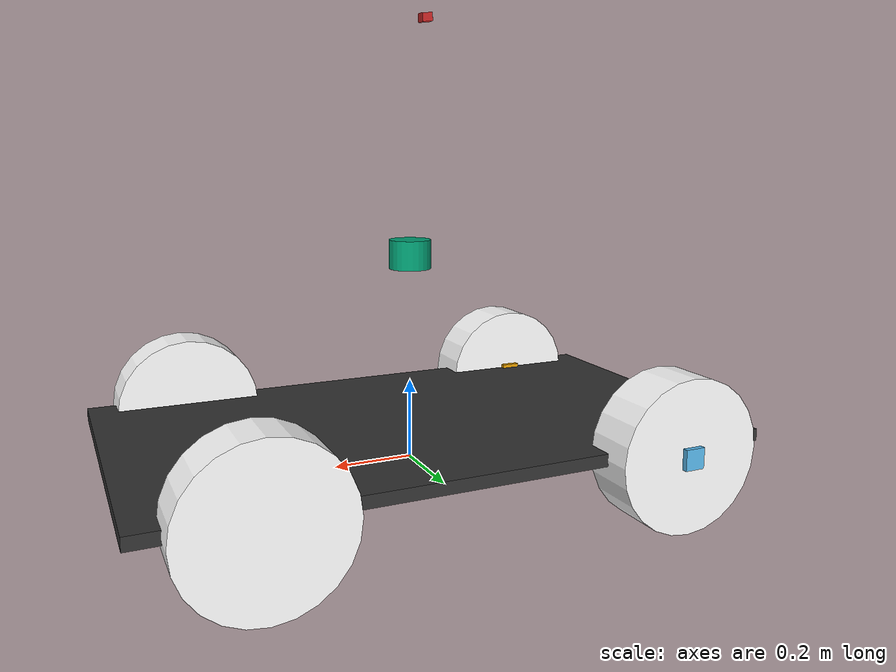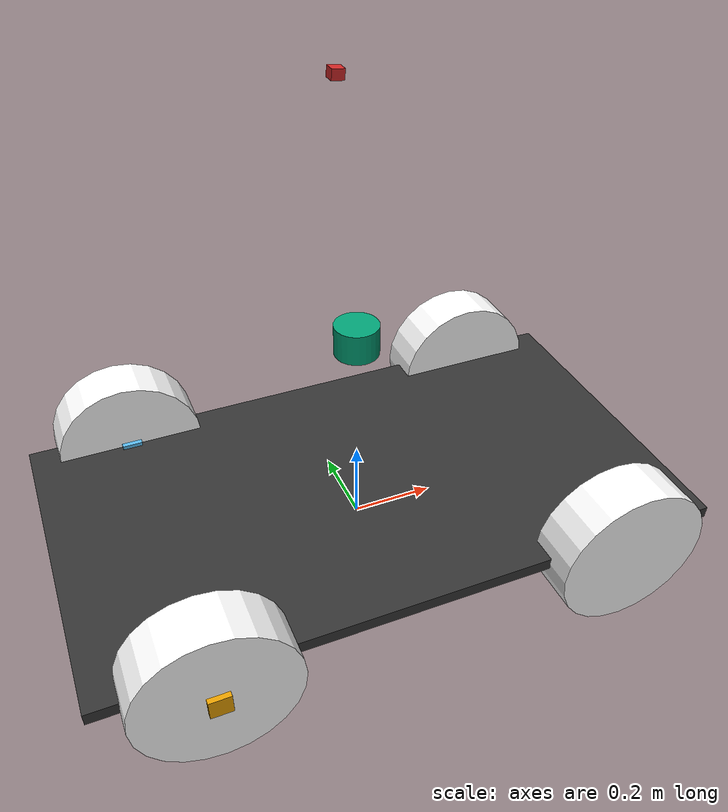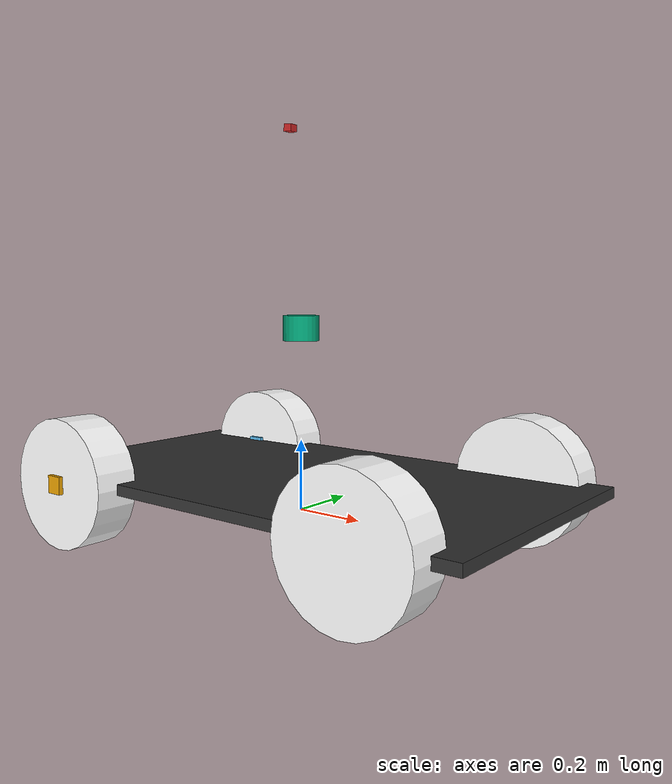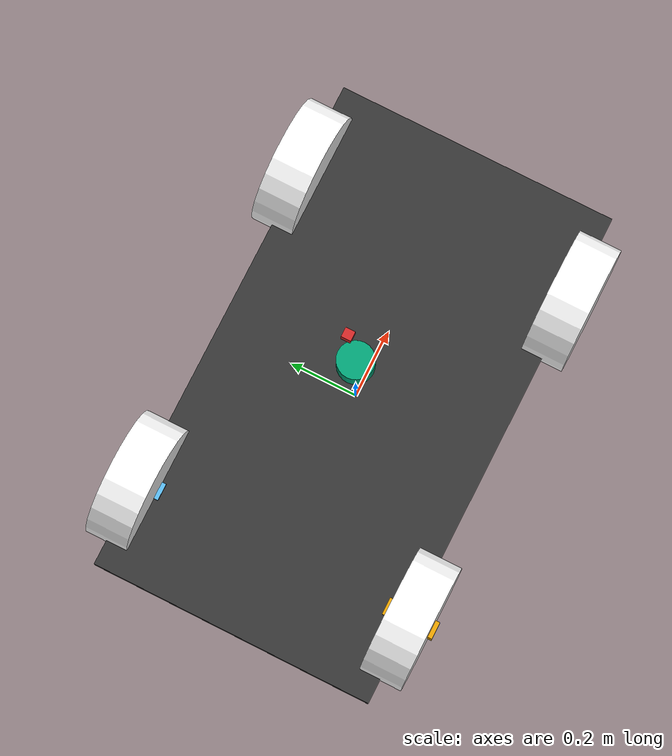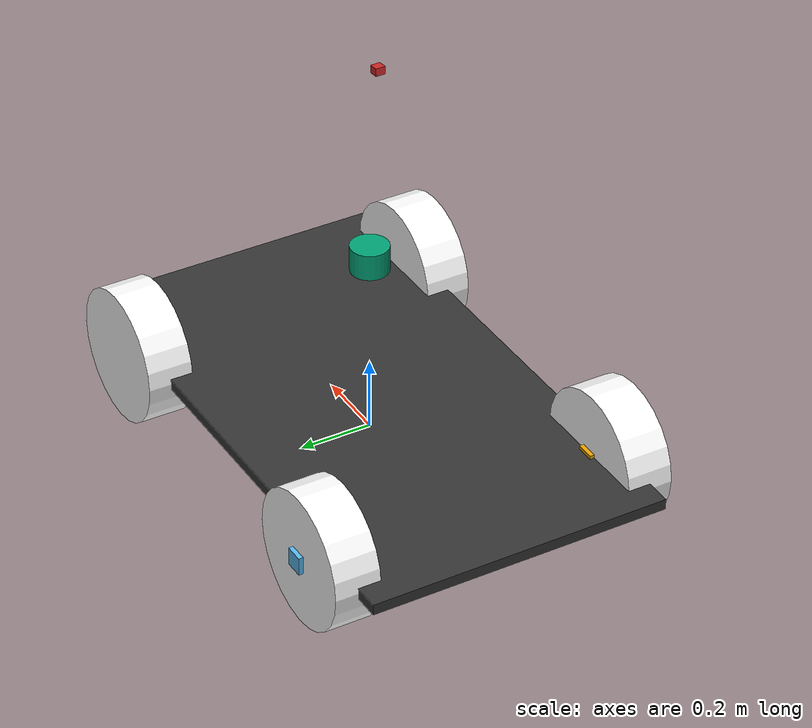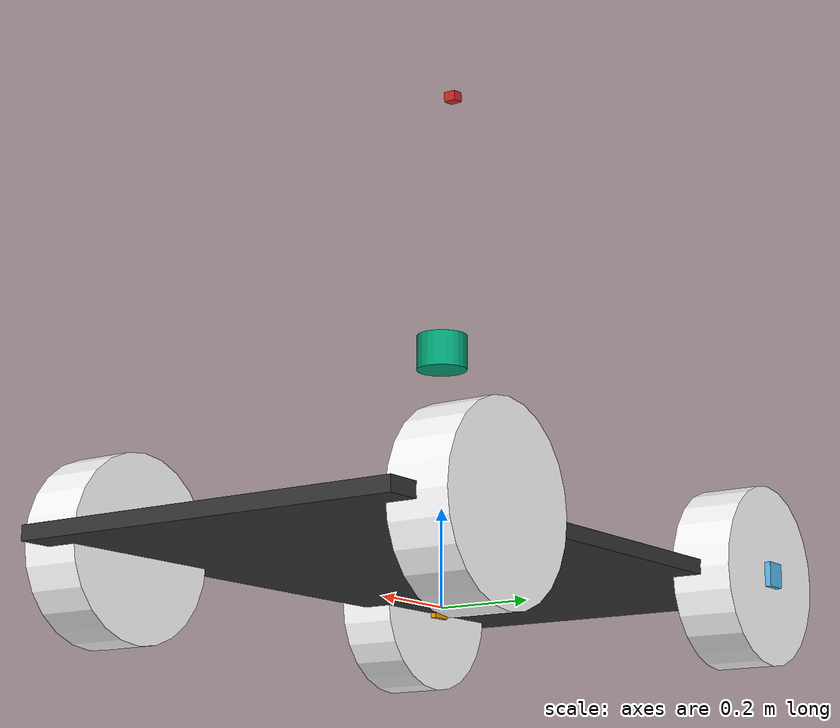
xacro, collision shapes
<?xml version="1.0"?>

<robot xmlns:xacro="http://www.ros.org/wiki/xacro" name="mevi">

    <xacro:arg name="gpu" default="false"/>
    <xacro:property name="gpu" value="$(arg gpu)" />
    <xacro:arg name="organize_cloud" default="false"/>
    <xacro:property name="organize_cloud" value="$(arg organize_cloud)" />

    <!-- Include -->
    <xacro:include filename="$(find spawn_car)/model/mevi/urdf/bases/mevi_body.urdf.xacro"/>
    <xacro:include filename="$(find spawn_car)/model/mevi/urdf/wheels/mevi_suspension.urdf.xacro"/>
    <xacro:include filename="$(find spawn_car)/model/mevi/urdf/vehicle_properties.urdf.xacro"/>
    <xacro:include filename="$(find spawn_car)/model/mevi/urdf/sensors/camera.urdf.xacro"/>
    <xacro:include filename="$(find spawn_car)/model/mevi/urdf/sensors/vlp-16.urdf.xacro"/>
    <!-- Robots Elements -->
    <xacro:mevi_base name="mevi"/>
    <xacro:Front_Right_Wheel/>
    <xacro:Front_Left_Wheel/>
    <xacro:Rear_Right_Wheel/>
    <xacro:Rear_Left_Wheel/>

    <xacro:rgb_camera frlr_prefix="front" lrc_prefix="center">
      <origin xyz="-0.04 0 1" rpy="0 0.087 0"/>
    </xacro:rgb_camera>

    <xacro:VLP-16 parent="chassis" name="velodyne" topic="/velodyne_points" organize_cloud="${organize_cloud}" hz="10" samples="440" gpu="${gpu}">
      <origin xyz="0 0 0.4" rpy="0 0 0" />
    </xacro:VLP-16>

      <gazebo>
        <plugin name="p3d" filename="libgazebo_ros_p3d.so">
          <bodyName>chassis</bodyName>
          <topicName>base_pose_ground_truth</topicName>
          <frameName>map</frameName>
          <updateRate>100.0</updateRate>
        </plugin>
      </gazebo>

      <gazebo>
        <plugin name="gazebo_ros_control" filename="libgazebo_ros_control.so">
          <robotNamespace>/mevi_model</robotNamespace>
          <!--The two lines below came from: https://answers.ros.org/question/292444/gazebo_ros_control-plugin-gazeboroscontrolplugin-missing-legacymodens-defaultrobothwsim/-->
          <robotSimType>gazebo_ros_control/DefaultRobotHWSim</robotSimType>
          <legacyModeNS>true</legacyModeNS>
        </plugin>
      </gazebo>

      <transmission name="front_left_steer_trans">
        <type>transmission_interface/SimpleTransmission</type>
        <actuator name="left_steer">
          <mechanicalReduction>1</mechanicalReduction>
        </actuator>
          <joint name="front_left_steer_joint">

          <!--this is a  mechanism for ros_control, it can be position, velocity, effort or something
              to communicate with hardware. See: https://wiki.ros.org/ros_control-->
            <hardwareInterface>hardware_interface/PositionJointInterface</hardwareInterface>
          </joint>
      </transmission>

      <transmission name="front_right_steer_trans">
        <type>transmission_interface/SimpleTransmission</type>
        <actuator name="right_steer">
          <mechanicalReduction>1</mechanicalReduction>
        </actuator>
          <joint name="front_right_steer_joint">
            <hardwareInterface>hardware_interface/PositionJointInterface</hardwareInterface>
          </joint>
      </transmission>

      <transmission name="rear_left_wheel_trans">
        <type>transmission_interface/SimpleTransmission</type>
        <actuator name="rear_left_motor">
          <mechanicalReduction>1</mechanicalReduction>
        </actuator>
          <joint name="rear_left_wheel_joint">
            <hardwareInterface>hardware_interface/VelocityJointInterface</hardwareInterface>
          </joint>
      </transmission>

      <transmission name="rear_right_wheel_trans">
        <type>transmission_interface/SimpleTransmission</type>
        <actuator name="rear_right_motor">
          <mechanicalReduction>1</mechanicalReduction>
        </actuator>
          <joint name="rear_right_wheel_joint">
            <hardwareInterface>hardware_interface/VelocityJointInterface</hardwareInterface>
          </joint>
      </transmission>

</robot>

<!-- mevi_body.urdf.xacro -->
<!--
Created on Thu Jan 18 2024

@author: hifzhil
-->
<robot xmlns:xacro="http://www.ros.org/wiki/xacro" name="mevi">
    <xacro:include filename="$(find spawn_car)/model/mevi/urdf/vehicle_properties.urdf.xacro"/>
    <xacro:include filename="$(find spawn_car)/model/mevi/urdf/bases/mevi_body.gazebo.xacro"/>

    <material name="chassis_mat">
        <color rgba="0.2 0.2 0.2 1"/>
        <!-- grey -->
    </material>

    <xacro:macro name="mevi_base" params="name">
        <link name="dummy">
            <visual>
                <origin xyz="0 0 0" rpy="0 0 0"/>
                <geometry>
                    <box size="0.001 0.001 0.001"/>
                </geometry>
            </visual>
        </link>

        <joint name="world_to_vehicle_center" type="fixed">
            <parent link="dummy"/>
            <child link="chassis"/>
            <origin xyz="0.0 0.0 ${ground_clearance + (chassis_thickness/2)}"/>
            <axis xyz = "0 0 1"/>
        </joint>

        <link name="chassis">

            <visual>
                <origin xyz="0 0 0" rpy="0 0 0"/>
                <geometry>
                    <box size="${chassis_length} ${chassis_width} ${chassis_thickness}"/>
                </geometry>
                <material name="chassis_mat"/>
            </visual>

            <collision>
                <origin xyz="0 0 0" rpy="0 0 0"/>
                <geometry>
                    <box size="${chassis_length} ${chassis_width} ${chassis_thickness}"/>
                </geometry>
            </collision>

            <xacro:inertia_of_body/>
        </link>
    </xacro:macro>

</robot>

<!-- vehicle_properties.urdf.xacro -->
<!--
Created on Thu Jan 18 12:02:12 2024

@author: hifzhil
-->

<robot name="mevi_properties" xmlns:xacro="http://www.ros.org/wiki/xacro">
    <!-- my name is Mevi-->

    <!-- CONSTANT -->
    <xacro:property name="pi_constant" value="3.14159265" />
    <xacro:property name = "degree_90" value="1.57079633"/>
    <xacro:property name = "degree_180" value="3.14159265"/>

    <xacro:property name="car_length" value="1.490" />
    <xacro:property name="car_width" value="0.830" />
    <xacro:property name="car_height" value="1.550" />
    <xacro:property name="front_overhang" value="0.220" />
    <xacro:property name="rear_overhang" value="0.280" />

    <!-- misalkan mevi adalah balok -->
    <xacro:property name="vehicle_volume" value="${car_length*car_width*car_height}"/>

    <xacro:property name="ground_clearance" value="0.07" />
    <xacro:property name="wheel_base" value="0.98" />
    <!-- chassis -->
    <xacro:property name="chassis_width" value="0.830" />
    <xacro:property name="chassis_length" value="1.49" />
    <xacro:property name="chassis_thickness" value="0.03" />
    <xacro:property name="chassis_mass" value="200" />
       <!-- variable -->

    <!-- aluminium density is 2.7 g/cm³ or 2700 kg/m3-->
    <xacro:property name="body_density" value="2700.0" />
    <!-- density of all tyre brands is nearly the same which is around 1.1 gr/cm3 or 1100 kg/m3 -->
    <xacro:property name="wheel_density" value="1100.0" />

    <!-- fixed transformation
        this value on rad. 1.570795 is a phi/2
    -->
    <xacro:property name="wheel_cylindrical_transform" value="1.570795" />

    <!-- mass -->
    <!-- let assume the mass of box same as half aluminium at it size-->
    <xacro:property name="body_mass" value="${body_density*body_volume*(1/2)}"/>
    <xacro:property name="wheel_mass" value="${wheel_density*wheel_volume}"/>

    <!-- moment inertia of wheel -->
    <xacro:property name="Iz_wheel" value="${0.5*wheel_mass*wheel_radius*wheel_radius}"/>
    <xacro:property name="I_wheel" value="${1/12*wheel_mass*(3*wheel_radius*wheel_radius + wheel_length*wheel_length)}"/>

  <!-- this is macro that we can call it anywhere on code
      it defines all inertia component on the wheel
  -->
    <xacro:macro name="inertia_of_wheel">
        <inertial>
            <origin rpy="0 0 0" xyz="0 0 0"/>
            <mass value="${wheel_mass}"/>
            <inertia
                ixx="${I_wheel}"
                ixy="0.0"
                ixz="0.0"
                iyy="${I_wheel}"
                iyz="0.0"
                izz="${Iz_wheel}"
            />
        </inertial>
    </xacro:macro>

    <xacro:macro name="inertia_of_body">
        <inertial>
            <origin rpy="0 0 0" xyz="0 0 0"/>
            <mass value="${chassis_mass}"/>
            <inertia
                ixy="0.0"
                ixz="0.0"
                iyz="0.0"
                ixx = "${(1/12)*chassis_mass*(chassis_width*chassis_width + chassis_thickness*chassis_thickness)}"
                iyy = "${(1/12)*chassis_mass*(chassis_length*chassis_length + chassis_thickness*chassis_thickness)}"
                izz = "${(1/12)*chassis_mass*(chassis_length*chassis_length + chassis_width*chassis_width)}"
            />
        </inertial>
    </xacro:macro>
</robot>

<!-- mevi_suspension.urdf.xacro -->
<!--
Created on Sat Jan 20 2024

@author: hifzhil
-->
<robot xmlns:xacro="http://www.ros.org/wiki/xacro" name="suspension urdf">

    <material name="tire_mat">
        <color rgba="1 1 1 1"/>
    </material>

    <xacro:include filename="$(find spawn_car)/model/mevi/urdf/wheels/suspension.gazebo.xacro"/>
    <xacro:include filename="$(find spawn_car)/model/mevi/urdf/vehicle_properties.urdf.xacro"/>

    <xacro:property name="front_wheel_radius" value="0.185"/>
    <xacro:property name="front_wheel_width" value="0.125"/>
    <xacro:property name="front_wheel_mass" value="10.0"/>

    <xacro:property name="rear_wheel_radius" value="0.185"/>
    <xacro:property name="rear_wheel_width" value="0.125"/>
    <xacro:property name="rear_wheel_mass" value="10.0"/>

    <xacro:property name="front_track" value="0.830" />
    <xacro:property name="rear_track" value="0.750" />

    <xacro:property name="Iz_rear_wheel" value="${0.5*rear_wheel_mass*rear_wheel_radius*rear_wheel_radius}"/>
    <xacro:property name="I_rear_wheel" value="${1/12*rear_wheel_mass*(3*rear_wheel_radius*rear_wheel_radius + rear_wheel_width*rear_wheel_width)}"/>

    <xacro:property name="Iz_front_wheel" value="${0.5*front_wheel_mass*front_wheel_radius*front_wheel_radius}"/>
    <xacro:property name="I_front_wheel" value="${1/12*front_wheel_mass*(3*front_wheel_radius*front_wheel_radius + front_wheel_width*front_wheel_width)}"/>

    <xacro:macro name="inertia_of_front_wheel">
        <inertial>
          <origin rpy="0 0 0" xyz="0 0 0"/>
          <mass value="${front_wheel_mass}"/>
          <inertia
            ixx="${I_front_wheel}"
            ixy="0.0"
            ixz="0.0"
            iyy="${I_front_wheel}"
            iyz="0.0"
            izz="${Iz_front_wheel}"
          />
        </inertial>
    </xacro:macro>

    <xacro:macro name="inertia_of_rear_wheel">
        <inertial>
          <origin rpy="0 0 0" xyz="0 0 0"/>
          <mass value="${rear_wheel_mass}"/>
          <inertia
            ixx="${I_rear_wheel}"
            ixy="0.0"
            ixz="0.0"
            iyy="${I_rear_wheel}"
            iyz="0.0"
            izz="${Iz_rear_wheel}"
          />
        </inertial>
    </xacro:macro>

    <xacro:macro name="Front_Left_Wheel">
        <joint name="front_left_steer_joint" type="revolute">
            <parent link="chassis"/>
            <child link="fl_axle"/>
            <origin rpy="${degree_90} 0 0" xyz="${-wheel_base/2} ${-front_track/2} 0"/>
            <axis xyz="0 1 0"/>
            <limit lower="-0.785398" upper="0.785398" effort="500000" velocity="250"/>
        </joint>
        <joint name="front_left_wheel_joint" type="continuous">
            <parent link="fl_axle"/>
            <child link="front_left_wheel"/>
            <origin xyz="0 0 0" rpy="0 0 0"/>
            <axis xyz="0 0 -1"/>
            <limit effort="1000" velocity="1000"/>
            <dynamics damping="1.0" friction="1.0"/>
        </joint>
    </xacro:macro>

    <xacro:macro name="Front_Right_Wheel">
        <joint name="front_right_steer_joint" type="revolute">
            <parent link="chassis"/>
            <child link="fr_axle"/>
            <origin rpy="${degree_90} 0 0" xyz="${-wheel_base/2} ${front_track/2} 0"/>
            <axis xyz="0 1 0"/>
            <limit lower="-0.785398" upper="0.785398" effort="500000" velocity="250"/>
        </joint>
        <joint name="front_right_wheel_joint" type="continuous">
            <parent link="fr_axle"/>
            <child link="front_right_wheel"/>
            <origin xyz="0 0 0" rpy="0 0 0"/>
            <axis xyz="0 0 -1"/>
            <limit effort="1000" velocity="1000"/>
            <dynamics damping="1.0" friction="1.0"/>
        </joint>
    </xacro:macro>

    <xacro:macro name="Rear_Left_Wheel">
        <joint name="rear_left_wheel_joint" type="continuous">
            <parent link="chassis"/>
            <child link="rear_left_wheel"/>
            <origin rpy="${degree_90} 0 0" xyz="${wheel_base/2} ${-front_track/2} 0"/>
            <axis xyz="0 0 -1"/>
            <limit effort="1000" velocity="1000"/>
            <dynamics damping="1.0" friction="1.0"/>
        </joint>
    </xacro:macro>

    <xacro:macro name="Rear_Right_Wheel">
        <joint name="rear_right_wheel_joint" type="continuous">
            <parent link="chassis"/>
            <child link="rear_right_wheel"/>
            <origin rpy="${degree_90} 0 0" xyz="${wheel_base/2} ${front_track/2} 0"/>
            <axis xyz="0 0 -1"/>
            <limit effort="1000" velocity="1000"/>
            <dynamics damping="1.0" friction="1.0"/>
        </joint>
    </xacro:macro>

    <link name="fl_axle">
        <inertial>
          <mass value="1"/>
          <origin xyz="0 0 0"/>
          <inertia ixx="0.004" ixy="0.0" ixz="0.0" iyy="0.004" iyz="0.0" izz="0.004"/>
        </inertial>
        <collision>
            <geometry>
              <box size="0.05 0.05 0.15" />
            </geometry>
        </collision>
        <visual>
            <geometry>
              <box size="0.05 0.05 0.15" />
            </geometry>
        </visual>
    </link>

    <link name="fr_axle">
        <inertial>
            <mass value="1"/>
            <origin xyz="0 0 0"/>
            <inertia ixx="0.004" ixy="0.0" ixz="0.0" iyy="0.004" iyz="0.0" izz="0.004"/>
        </inertial>
        <collision>
            <geometry>
              <box size="0.05 0.05 0.15" />
            </geometry>
        </collision>
        <visual>
            <geometry>
              <box size="0.05 0.05 0.15" />
            </geometry>
        </visual>
    </link>

    <link name="front_right_wheel">
        <visual>
            <origin rpy="0 0 0" xyz="0 0 0"/>
            <geometry>
                <cylinder length="${front_wheel_width}" radius="${front_wheel_radius}"/>
            </geometry>
            <material name="tire_mat"/>
        </visual>
        <collision>
            <origin rpy="0 0 0" xyz="0 0 0"/>
            <geometry>
                <cylinder length="${front_wheel_width}" radius="${front_wheel_radius}"/>
            </geometry>
        </collision>
        <xacro:inertia_of_front_wheel/>
    </link>

    <link name="front_left_wheel">
        <visual>
            <origin rpy="0 0 0" xyz="0 0 0"/>
            <geometry>
                <cylinder length="${front_wheel_width}" radius="${front_wheel_radius}"/>
            </geometry>
            <material name="tire_mat"/>
        </visual>
        <collision>
            <origin rpy="0 0 0" xyz="0 0 0"/>
            <geometry>
                <cylinder length="${front_wheel_width}" radius="${front_wheel_radius}"/>
            </geometry>
        </collision>
        <xacro:inertia_of_front_wheel/>
    </link>

    <link name="rear_right_wheel">
        <visual>
            <origin rpy="0 0 0" xyz="0 0 0"/>
            <geometry>
                <cylinder length="${rear_wheel_width}" radius="${rear_wheel_radius}"/>
            </geometry>
            <material name="tire_mat"/>
        </visual>
        <collision>
            <origin rpy="0 0 0" xyz="0 0 0"/>
            <geometry>
                <cylinder length="${rear_wheel_width}" radius="${rear_wheel_radius}"/>
            </geometry>
        </collision>
        <xacro:inertia_of_rear_wheel/>
    </link>

    <link name="rear_left_wheel">
        <visual>
            <origin rpy="0 0 0" xyz="0 0 0"/>
            <geometry>
                <cylinder length="${rear_wheel_width}" radius="${rear_wheel_radius}"/>
            </geometry>
            <material name="tire_mat"/>
        </visual>
        <collision>
            <origin rpy="0 0 0" xyz="0 0 0"/>
            <geometry>
                <cylinder length="${rear_wheel_width}" radius="${rear_wheel_radius}"/>
            </geometry>
        </collision>
        <xacro:inertia_of_rear_wheel/>
    </link>
</robot>

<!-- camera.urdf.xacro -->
<robot xmlns:xacro="http://www.ros.org/wiki/xacro" name="rgb_camera">

  <xacro:macro name="rgb_camera" params="frlr_prefix lrc_prefix *origin">

    <joint name="${frlr_prefix}_${lrc_prefix}_camera_joint" type="fixed">
      <axis xyz="0 1 0" />
      <xacro:insert_block name="origin"/>
      <!-- parent link dari camera adalah chassis -->
      <parent link="chassis"/>
      <child link="${frlr_prefix}_${lrc_prefix}_camera_link"/>
    </joint>

    <link name="${frlr_prefix}_${lrc_prefix}_camera_link">
      <collision>
        <origin xyz="0 0 0" rpy="0 0 0"/>
        <geometry>
          <box size="0.026 0.026 0.0203"/>
        </geometry>
      </collision>

      <visual>
        <origin xyz="0 0 0" rpy="0 0 0"/>
        <geometry>
          <box size="0.026 0.026 0.0203"/>
        </geometry>
        <material name="red"/>
      </visual>

      <inertial>
        <mass value="1e-5" />
        <origin xyz="0 0 0" rpy="0 0 0"/>
        <inertia ixx="1e-6" ixy="0" ixz="0" iyy="1e-6" iyz="0" izz="1e-6" />
      </inertial>
    </link>

    <joint name="${frlr_prefix}_${lrc_prefix}_camera_optical_joint" type="fixed">
      <origin xyz="0 0 0" rpy="${-pi/2} 0 ${-pi/2}"/>
      <parent link="${frlr_prefix}_${lrc_prefix}_camera_link"/>
      <child link="${frlr_prefix}_${lrc_prefix}_camera_link_optical"/>
    </joint>

    <link name="${frlr_prefix}_${lrc_prefix}_camera_link_optical"/>
        <gazebo reference="${frlr_prefix}_${lrc_prefix}_camera_link">
            <mu1>0.2</mu1>
            <mu2>0.2</mu2>
            <material>Gazebo/Red</material>
            <sensor type="camera" name="${frlr_prefix}_${lrc_prefix}_camera">
                <update_rate>30.0</update_rate>
                <camera name="head">
                    <horizontal_fov>2.09</horizontal_fov>
                    <image>
                        <width>1920</width>
                        <height>1200</height>
                        <format>R8G8B8</format>
                    </image>
                    <clip>
                        <near>0.1</near>
                        <far>30</far>
                    </clip>
                    <noise>
                        <type>gaussian</type>
                        <mean>0.0</mean>
                        <stddev>0.007</stddev>
                    </noise>
                </camera>
                <plugin name="${frlr_prefix}_${lrc_prefix}_camera_controller" filename="libgazebo_ros_camera.so">
                    <alwaysOn>true</alwaysOn>
                    <updateRate>0.0</updateRate>
                    <cameraName>mevi/${frlr_prefix}_${lrc_prefix}_camera</cameraName>
                    <imageTopicName>image_raw</imageTopicName>
                    <cameraInfoTopicName>camera_info</cameraInfoTopicName>
                    <frameName>${frlr_prefix}_${lrc_prefix}_camera_link_optical</frameName>
                    <!-- setting hackBaseline to anything but 0.0 will cause a misalignment
                        between the gazebo sensor image and the frame it is supposed to
                        be attached to -->
                    <hackBaseline>0.0</hackBaseline>
                    <distortionK1>0.0</distortionK1>
                    <distortionK2>0.0</distortionK2>
                    <distortionK3>0.0</distortionK3>
                    <distortionT1>0.0</distortionT1>
                    <distortionT2>0.0</distortionT2>
                    <CxPrime>0</CxPrime>
                    <Cx>0.0</Cx>
                    <Cy>0.0</Cy>
                    <focalLength>0.0</focalLength>
                </plugin>
            </sensor>
        </gazebo>

  </xacro:macro>
</robot>

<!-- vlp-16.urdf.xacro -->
<robot xmlns:xacro="http://www.ros.org/wiki/xacro" name="VLP-16">
  <xacro:property name="M_PI" value="3.1415926535897931" />
    <xacro:macro name="VLP-16" params="*origin parent:=chassis name:=velodyne topic:=/velodyne_points organize_cloud:=false hz:=10 lasers:=16 samples:=1875 collision_range:=0.3 min_range:=0.9 max_range:=130.0 noise:=0.008 min_angle:=-${M_PI} max_angle:=${M_PI} gpu:=false">

        <joint name="${name}_base_mount_joint" type="fixed">
        <xacro:insert_block name="origin" />
        <parent link="${parent}"/>
        <child link="${name}_base_link"/>
        </joint>

        <link name="${name}_base_link">
        <inertial>
            <mass value="0.83"/>
            <origin xyz="0 0 0.03585"/>
            <inertia ixx="${(0.83 * (3.0*0.0516*0.0516 + 0.0717*0.0717)) / 12.0}" ixy="0" ixz="0"
            iyy="${(0.83 * (3.0*0.0516*0.0516 + 0.0717*0.0717)) / 12.0}" iyz="0"
            izz="${0.5 * 0.83 * (0.0516*0.0516)}"/>
        </inertial>
        <visual>
            <geometry>
            <mesh filename="package://spawn_car/model/mevi/meshes/VLP16_base_1.dae" />
            </geometry>
        </visual>
        <visual>
            <geometry>
            <mesh filename="package://spawn_car/model/mevi/meshes/VLP16_base_2.dae" />
            </geometry>
        </visual>
        <collision>
            <origin rpy="0 0 0" xyz="0 0 0.03585"/>
            <geometry>
            <cylinder radius="0.0516" length="0.0717"/>
            </geometry>
        </collision>
        </link>

        <joint name="${name}_base_scan_joint" type="fixed" >
        <origin xyz="0 0 0.0377" rpy="0 0 0" />
        <parent link="${name}_base_link" />
        <child link="${name}"/>
        </joint>

        <link name="${name}">
        <inertial>
            <mass value="0.01"/>
            <origin xyz="0 0 0"/>
            <inertia ixx="1e-7" ixy="0" ixz="0" iyy="1e-7" iyz="0" izz="1e-7"/>
        </inertial>
        <visual>
            <origin xyz="0 0 -0.0377" />
            <geometry>
            <mesh filename="package://spawn_car/model/mevi/meshes/VLP16_scan.dae" />
            </geometry>
        </visual>
        <collision>
            <geometry>
            <sphere radius="0"/>
            </geometry>
        </collision>
        </link>

        <!-- Gazebo requires the velodyne_gazebo_plugins package -->
        <gazebo reference="${name}">
        <xacro:if value="${gpu}">
            <sensor type="gpu_ray" name="${name}-VLP16">
            <pose>0 0 0 0 0 0</pose>
            <visualize>false</visualize>
            <update_rate>${hz}</update_rate>
            <ray>
                <scan>
                <horizontal>
                    <samples>${samples}</samples>
                    <resolution>1</resolution>
                    <min_angle>${min_angle}</min_angle>
                    <max_angle>${max_angle}</max_angle>
                </horizontal>
                <vertical>
                    <samples>${lasers}</samples>
                    <resolution>1</resolution>
                    <min_angle>-${15.0*M_PI/180.0}</min_angle>
                    <max_angle> ${15.0*M_PI/180.0}</max_angle>
                </vertical>
                </scan>
                <range>
                <min>${collision_range}</min>
                <max>${max_range+1}</max>
                <resolution>0.001</resolution>
                </range>
                <noise>
                <type>gaussian</type>
                <mean>0.0</mean>
                <stddev>0.0</stddev>
                </noise>
            </ray>
            <plugin name="gazebo_ros_laser_controller" filename="libgazebo_ros_velodyne_gpu_laser.so">
                <topicName>${topic}</topicName>
                <frameName>${name}</frameName>
                <organize_cloud>${organize_cloud}</organize_cloud>
                <min_range>${min_range}</min_range>
                <max_range>${max_range}</max_range>
                <gaussianNoise>${noise}</gaussianNoise>
            </plugin>
            </sensor>
        </xacro:if>
        <xacro:unless value="${gpu}">
            <sensor type="ray" name="${name}-VLP16">
            <pose>0 0 0 0 0 0</pose>
            <visualize>false</visualize>
            <update_rate>${hz}</update_rate>
            <ray>
                <scan>
                <horizontal>
                    <samples>${samples}</samples>
                    <resolution>1</resolution>
                    <min_angle>${min_angle}</min_angle>
                    <max_angle>${max_angle}</max_angle>
                </horizontal>
                <vertical>
                    <samples>${lasers}</samples>
                    <resolution>1</resolution>
                    <min_angle>-${15.0*M_PI/180.0}</min_angle>
                    <max_angle> ${15.0*M_PI/180.0}</max_angle>
                </vertical>
                </scan>
                <range>
                <min>${collision_range}</min>
                <max>${max_range+1}</max>
                <resolution>0.001</resolution>
                </range>
                <noise>
                <type>gaussian</type>
                <mean>0.0</mean>
                <stddev>0.0</stddev>
                </noise>
            </ray>
            <plugin name="gazebo_ros_laser_controller" filename="libgazebo_ros_velodyne_laser.so">
                <topicName>${topic}</topicName>
                <frameName>${name}</frameName>
                <organize_cloud>${organize_cloud}</organize_cloud>
                <min_range>${min_range}</min_range>
                <max_range>${max_range}</max_range>
                <gaussianNoise>${noise}</gaussianNoise>
            </plugin>
            </sensor>
        </xacro:unless>
        </gazebo>

    </xacro:macro>
</robot>
